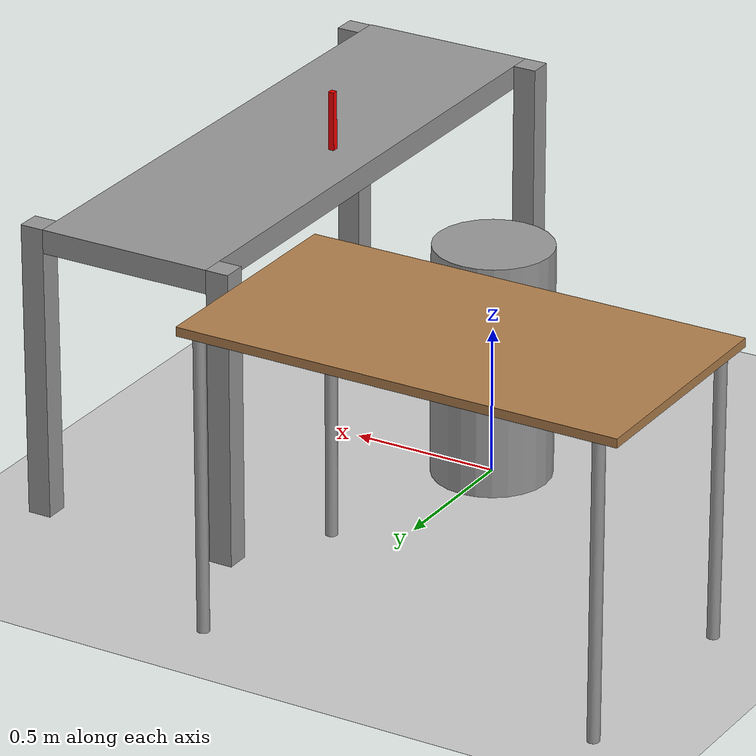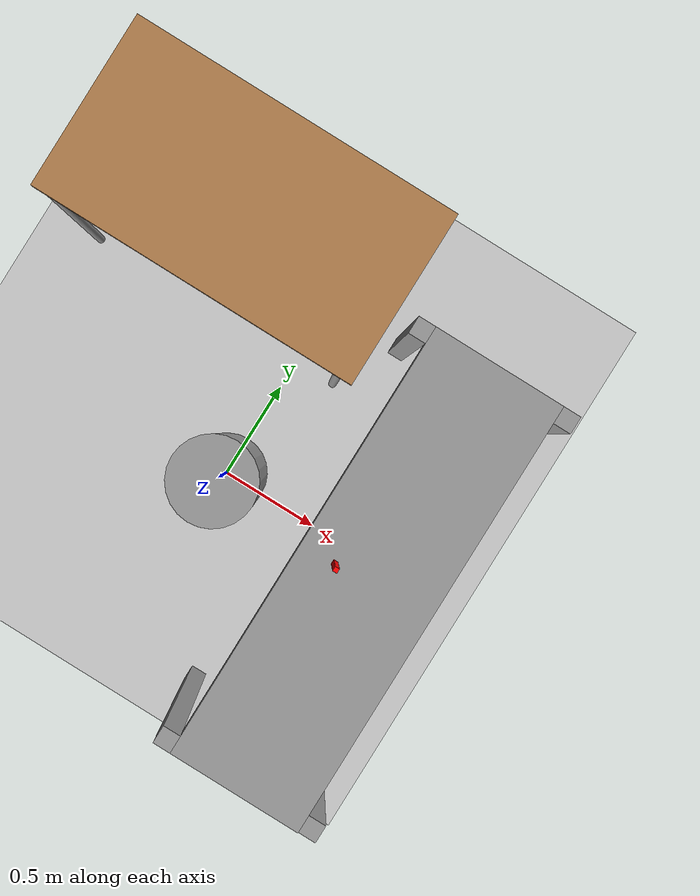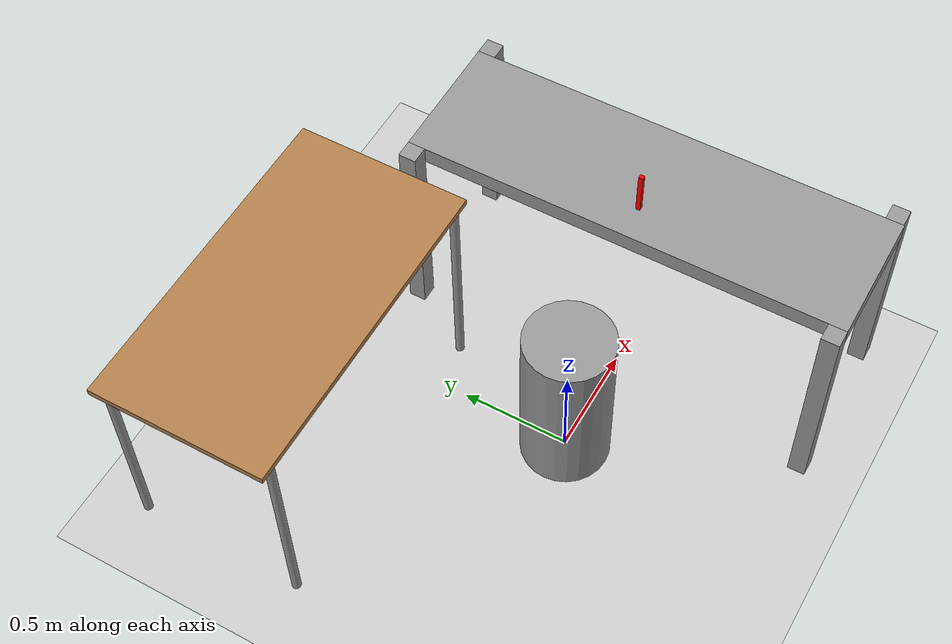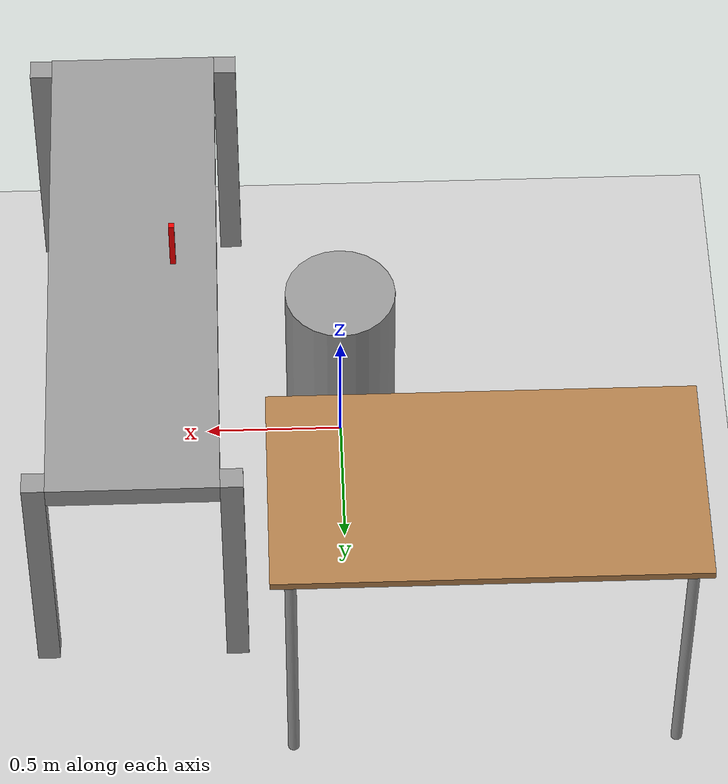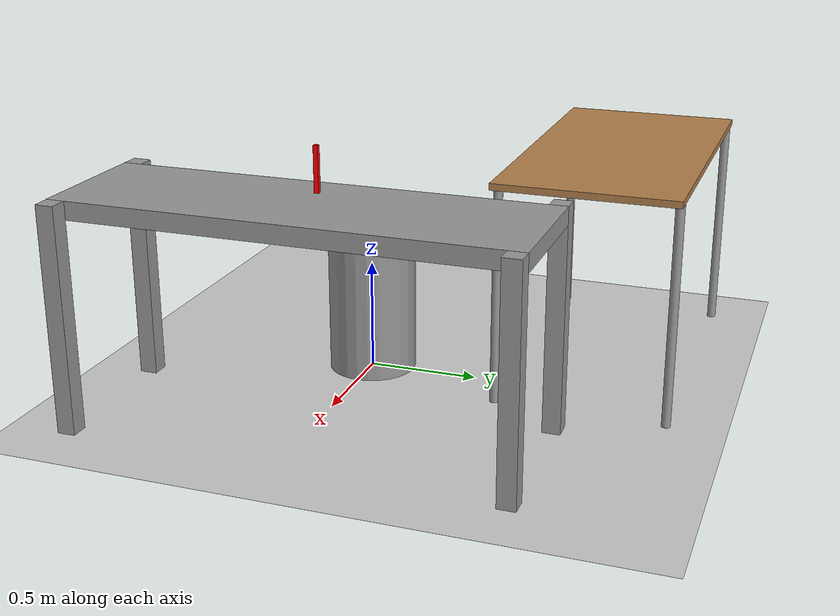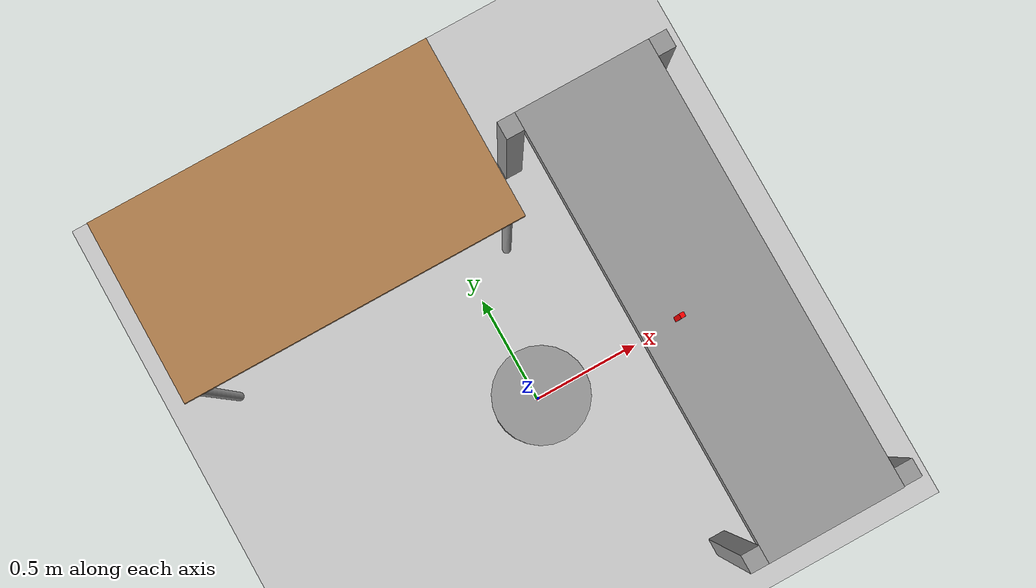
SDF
<sdf version="1.7">
 <world name="default">
  <light name="sun" type="directional">
   <pose>0 0 10 0 -0 0</pose>
   <diffuse>0.8 0.8 0.8 1</diffuse>
   <specular>0.2 0.2 0.2 1</specular>
   <attenuation>
    <range>1000</range>
    <constant>0.9</constant>
    <linear>0.01</linear>
    <quadratic>0.001</quadratic>
   </attenuation>
   <direction>-0.5 0.1 -0.9</direction>
   <spot><inner_angle>0</inner_angle><outer_angle>0</outer_angle><falloff>0</falloff></spot>
  </light>
  <model name="ground_plane">
   <static>1</static>
   <link name="link">
    <collision name="collision">
     <geometry><plane><normal>0 0 1</normal><size>100 100</size></plane></geometry>
     <surface>
      <contact><collide_bitmask>65535</collide_bitmask></contact>
      <friction><ode><mu>100</mu><mu2>50</mu2></ode></friction>
     </surface>
    </collision>
    <visual name="visual">
     <cast_shadows>0</cast_shadows>
     <geometry><plane><normal>0 0 1</normal><size>100 100</size></plane></geometry>
     <material>
      <script><uri>file://media/materials/scripts/gazebo.material</uri><name>Gazebo/Grey</name></script>
     </material>
    </visual>
   </link>
  </model>
  <gravity>0 0 -9.8</gravity>
  <magnetic_field>6e-06 2.3e-05 -4.2e-05</magnetic_field>
  <atmosphere type="adiabatic"/>
  <physics type="ode">
   <max_step_size>0.001</max_step_size>
   <real_time_factor>1</real_time_factor>
   <real_time_update_rate>1000</real_time_update_rate>
  </physics>
  <scene><ambient>0.4 0.4 0.4 1</ambient><background>0.7 0.7 0.7 1</background><shadows>1</shadows></scene>
  <spherical_coordinates>
   <surface_model>EARTH_WGS84</surface_model>
   <latitude_deg>0</latitude_deg>
   <longitude_deg>0</longitude_deg>
   <elevation>0</elevation>
   <heading_deg>0</heading_deg>
  </spherical_coordinates>
  <model name="table">
   <static>1</static>
   <link name="link_table">
    <collision name="surface">
     <pose>0 0 1 0 -0 0</pose>
     <geometry><box><size>1.5 0.8 0.03</size></box></geometry>
     <surface><friction><ode><mu>0.6</mu><mu2>0.6</mu2></ode></friction></surface>
    </collision>
    <visual name="visual1">
     <pose>0 0 1 0 -0 0</pose>
     <geometry><box><size>1.5 0.8 0.03</size></box></geometry>
     <material>
      <script><uri>file://media/materials/scripts/gazebo.material</uri><name>Gazebo/Wood</name></script>
     </material>
    </visual>
    <collision name="front_left_leg">
     <pose>0.68 0.38 0.5 0 -0 0</pose>
     <geometry><cylinder><radius>0.02</radius><length>1</length></cylinder></geometry>
    </collision>
    <visual name="front_left_leg">
     <pose>0.68 0.38 0.5 0 -0 0</pose>
     <geometry><cylinder><radius>0.02</radius><length>1</length></cylinder></geometry>
     <material>
      <script><uri>file://media/materials/scripts/gazebo.material</uri><name>Gazebo/Grey</name></script>
     </material>
    </visual>
    <collision name="front_right_leg">
     <pose>0.68 -0.38 0.5 0 -0 0</pose>
     <geometry><cylinder><radius>0.02</radius><length>1</length></cylinder></geometry>
    </collision>
    <visual name="front_right_leg">
     <pose>0.68 -0.38 0.5 0 -0 0</pose>
     <geometry><cylinder><radius>0.02</radius><length>1</length></cylinder></geometry>
     <material>
      <script><uri>file://media/materials/scripts/gazebo.material</uri><name>Gazebo/Grey</name></script>
     </material>
    </visual>
    <collision name="back_right_leg">
     <pose>-0.68 -0.38 0.5 0 -0 0</pose>
     <geometry><cylinder><radius>0.02</radius><length>1</length></cylinder></geometry>
    </collision>
    <visual name="back_right_leg">
     <pose>-0.68 -0.38 0.5 0 -0 0</pose>
     <geometry><cylinder><radius>0.02</radius><length>1</length></cylinder></geometry>
     <material>
      <script><uri>file://media/materials/scripts/gazebo.material</uri><name>Gazebo/Grey</name></script>
     </material>
    </visual>
    <collision name="back_left_leg">
     <pose>-0.68 0.38 0.5 0 -0 0</pose>
     <geometry><cylinder><radius>0.02</radius><length>1</length></cylinder></geometry>
    </collision>
    <visual name="back_left_leg">
     <pose>-0.68 0.38 0.5 0 -0 0</pose>
     <geometry><cylinder><radius>0.02</radius><length>1</length></cylinder></geometry>
     <material>
      <script><uri>file://media/materials/scripts/gazebo.material</uri><name>Gazebo/Grey</name></script>
     </material>
    </visual>
   </link>
   <pose>-0.470984 1.03526 0 0 -0 0</pose>
  </model>
  <model name="conveyor">
   <link name="link_0">
    <inertial>
     <mass>1</mass>
     <inertia>
      <ixx>0.166667</ixx>
      <ixy>0</ixy>
      <ixz>0</ixz>
      <iyy>0.166667</iyy>
      <iyz>0</iyz>
      <izz>0.166667</izz>
     </inertia>
    </inertial>
    <pose>0 -0.00065 0 0 -0 0</pose>
    <visual name="visual">
     <geometry><box><size>0.6 2 0.08</size></box></geometry>
     <material>
      <lighting>1</lighting>
      <script><uri>file://media/materials/scripts/gazebo.material</uri><name>Gazebo/Grey</name></script>
      <shader type="pixel"><normal_map>__default__</normal_map></shader>
      <ambient>0.21176 0.21568 0.21568 1</ambient>
      <diffuse>0.7 0.7 0.7 1</diffuse>
      <specular>0.01 0.01 0.01 1</specular>
      <emissive>0 0 0 1</emissive>
     </material>
    </visual>
    <collision name="collision">
     <geometry><box><size>0.6 2 0.08</size></box></geometry>
     <surface>
      <friction>
       <ode><mu>4</mu><mu2>1</mu2><fdir1>0 0 0</fdir1><slip1>0</slip1><slip2>0</slip2></ode>
       <torsional>
        <coefficient>1</coefficient>
        <patch_radius>0</patch_radius>
        <surface_radius>0</surface_radius>
        <use_patch_radius>1</use_patch_radius>
        <ode><slip>0</slip></ode>
       </torsional>
      </friction>
      <bounce><restitution_coefficient>0</restitution_coefficient><threshold>1e+06</threshold></bounce>
      <contact>
       <collide_without_contact>0</collide_without_contact>
       <collide_without_contact_bitmask>1</collide_without_contact_bitmask>
       <collide_bitmask>1</collide_bitmask>
       <ode>
        <soft_cfm>0</soft_cfm>
        <soft_erp>0.2</soft_erp>
        <kp>1e+13</kp>
        <kd>1</kd>
        <max_vel>0.01</max_vel>
        <min_depth>0</min_depth>
       </ode>
       <bullet>
        <split_impulse>1</split_impulse>
        <split_impulse_penetration_threshold>-0.01</split_impulse_penetration_threshold>
        <soft_cfm>0</soft_cfm>
        <soft_erp>0.2</soft_erp>
        <kp>1e+13</kp>
        <kd>1</kd>
       </bullet>
      </contact>
     </surface>
    </collision>
   </link>
   <link name="link_1">
    <inertial>
     <mass>1</mass>
     <inertia>
      <ixx>0.166667</ixx>
      <ixy>0</ixy>
      <ixz>0</ixz>
      <iyy>0.166667</iyy>
      <iyz>0</iyz>
      <izz>0.166667</izz>
     </inertia>
    </inertial>
    <pose>0.34 -0.9574 -0.46 0 -0 0</pose>
    <visual name="visual">
     <geometry><box><size>0.08 0.08 1</size></box></geometry>
     <material>
      <lighting>1</lighting>
      <script><uri>file://media/materials/scripts/gazebo.material</uri><name>Gazebo/Grey</name></script>
      <shader type="pixel"><normal_map>__default__</normal_map></shader>
      <ambient>0.3 0.3 0.3 1</ambient>
      <diffuse>0.7 0.7 0.7 1</diffuse>
      <specular>0.01 0.01 0.01 1</specular>
      <emissive>0 0 0 1</emissive>
     </material>
    </visual>
    <collision name="collision">
     <geometry><box><size>0.08 0.08 1</size></box></geometry>
     <surface>
      <friction>
       <ode><mu>1</mu><mu2>1</mu2><fdir1>0 0 0</fdir1><slip1>0</slip1><slip2>0</slip2></ode>
       <torsional>
        <coefficient>1</coefficient>
        <patch_radius>0</patch_radius>
        <surface_radius>0</surface_radius>
        <use_patch_radius>1</use_patch_radius>
        <ode><slip>0</slip></ode>
       </torsional>
      </friction>
      <bounce><restitution_coefficient>0</restitution_coefficient><threshold>1e+06</threshold></bounce>
      <contact>
       <collide_without_contact>0</collide_without_contact>
       <collide_without_contact_bitmask>1</collide_without_contact_bitmask>
       <collide_bitmask>1</collide_bitmask>
       <ode>
        <soft_cfm>0</soft_cfm>
        <soft_erp>0.2</soft_erp>
        <kp>1e+13</kp>
        <kd>1</kd>
        <max_vel>0.01</max_vel>
        <min_depth>0</min_depth>
       </ode>
       <bullet>
        <split_impulse>1</split_impulse>
        <split_impulse_penetration_threshold>-0.01</split_impulse_penetration_threshold>
        <soft_cfm>0</soft_cfm>
        <soft_erp>0.2</soft_erp>
        <kp>1e+13</kp>
        <kd>1</kd>
       </bullet>
      </contact>
     </surface>
    </collision>
   </link>
   <link name="link_1_clone">
    <inertial>
     <mass>1</mass>
     <inertia>
      <ixx>0.166667</ixx>
      <ixy>0</ixy>
      <ixz>0</ixz>
      <iyy>0.166667</iyy>
      <iyz>0</iyz>
      <izz>0.166667</izz>
     </inertia>
    </inertial>
    <pose>0.34 0.95935 -0.46 0 -0 0</pose>
    <visual name="visual">
     <geometry><box><size>0.08 0.08 1</size></box></geometry>
     <material>
      <lighting>1</lighting>
      <script><uri>file://media/materials/scripts/gazebo.material</uri><name>Gazebo/Grey</name></script>
      <shader type="pixel"><normal_map>__default__</normal_map></shader>
      <ambient>0.3 0.3 0.3 1</ambient>
      <diffuse>0.7 0.7 0.7 1</diffuse>
      <specular>0.01 0.01 0.01 1</specular>
      <emissive>0 0 0 1</emissive>
     </material>
    </visual>
    <collision name="collision">
     <geometry><box><size>0.08 0.08 1</size></box></geometry>
     <surface>
      <friction>
       <ode><mu>1</mu><mu2>1</mu2><fdir1>0 0 0</fdir1><slip1>0</slip1><slip2>0</slip2></ode>
       <torsional>
        <coefficient>1</coefficient>
        <patch_radius>0</patch_radius>
        <surface_radius>0</surface_radius>
        <use_patch_radius>1</use_patch_radius>
        <ode><slip>0</slip></ode>
       </torsional>
      </friction>
      <bounce><restitution_coefficient>0</restitution_coefficient><threshold>1e+06</threshold></bounce>
      <contact>
       <collide_without_contact>0</collide_without_contact>
       <collide_without_contact_bitmask>1</collide_without_contact_bitmask>
       <collide_bitmask>1</collide_bitmask>
       <ode>
        <soft_cfm>0</soft_cfm>
        <soft_erp>0.2</soft_erp>
        <kp>1e+13</kp>
        <kd>1</kd>
        <max_vel>0.01</max_vel>
        <min_depth>0</min_depth>
       </ode>
       <bullet>
        <split_impulse>1</split_impulse>
        <split_impulse_penetration_threshold>-0.01</split_impulse_penetration_threshold>
        <soft_cfm>0</soft_cfm>
        <soft_erp>0.2</soft_erp>
        <kp>1e+13</kp>
        <kd>1</kd>
       </bullet>
      </contact>
     </surface>
    </collision>
   </link>
   <link name="link_1_clone_0">
    <inertial>
     <mass>1</mass>
     <inertia>
      <ixx>0.166667</ixx>
      <ixy>0</ixy>
      <ixz>0</ixz>
      <iyy>0.166667</iyy>
      <iyz>0</iyz>
      <izz>0.166667</izz>
     </inertia>
    </inertial>
    <pose>-0.34 0.95935 -0.46 0 -0 0</pose>
    <visual name="visual">
     <geometry><box><size>0.08 0.08 1</size></box></geometry>
     <material>
      <lighting>1</lighting>
      <script><uri>file://media/materials/scripts/gazebo.material</uri><name>Gazebo/Grey</name></script>
      <shader type="pixel"><normal_map>__default__</normal_map></shader>
      <ambient>0.3 0.3 0.3 1</ambient>
      <diffuse>0.7 0.7 0.7 1</diffuse>
      <specular>0.01 0.01 0.01 1</specular>
      <emissive>0 0 0 1</emissive>
     </material>
    </visual>
    <collision name="collision">
     <geometry><box><size>0.08 0.08 1</size></box></geometry>
     <surface>
      <friction>
       <ode><mu>1</mu><mu2>1</mu2><fdir1>0 0 0</fdir1><slip1>0</slip1><slip2>0</slip2></ode>
       <torsional>
        <coefficient>1</coefficient>
        <patch_radius>0</patch_radius>
        <surface_radius>0</surface_radius>
        <use_patch_radius>1</use_patch_radius>
        <ode><slip>0</slip></ode>
       </torsional>
      </friction>
      <bounce><restitution_coefficient>0</restitution_coefficient><threshold>1e+06</threshold></bounce>
      <contact>
       <collide_without_contact>0</collide_without_contact>
       <collide_without_contact_bitmask>1</collide_without_contact_bitmask>
       <collide_bitmask>1</collide_bitmask>
       <ode>
        <soft_cfm>0</soft_cfm>
        <soft_erp>0.2</soft_erp>
        <kp>1e+13</kp>
        <kd>1</kd>
        <max_vel>0.01</max_vel>
        <min_depth>0</min_depth>
       </ode>
       <bullet>
        <split_impulse>1</split_impulse>
        <split_impulse_penetration_threshold>-0.01</split_impulse_penetration_threshold>
        <soft_cfm>0</soft_cfm>
        <soft_erp>0.2</soft_erp>
        <kp>1e+13</kp>
        <kd>1</kd>
       </bullet>
      </contact>
     </surface>
    </collision>
   </link>
   <link name="link_1_clone_1">
    <inertial>
     <mass>1</mass>
     <inertia>
      <ixx>0.166667</ixx>
      <ixy>0</ixy>
      <ixz>0</ixz>
      <iyy>0.166667</iyy>
      <iyz>0</iyz>
      <izz>0.166667</izz>
     </inertia>
    </inertial>
    <pose>-0.34 -0.96065 -0.46 0 -0 0</pose>
    <visual name="visual">
     <geometry><box><size>0.08 0.08 1</size></box></geometry>
     <material>
      <lighting>1</lighting>
      <script><uri>file://media/materials/scripts/gazebo.material</uri><name>Gazebo/Grey</name></script>
      <shader type="pixel"><normal_map>__default__</normal_map></shader>
      <ambient>0.3 0.3 0.3 1</ambient>
      <diffuse>0.7 0.7 0.7 1</diffuse>
      <specular>0.01 0.01 0.01 1</specular>
      <emissive>0 0 0 1</emissive>
     </material>
    </visual>
    <collision name="collision">
     <geometry><box><size>0.08 0.08 1</size></box></geometry>
     <surface>
      <friction>
       <ode><mu>1</mu><mu2>1</mu2><fdir1>0 0 0</fdir1><slip1>0</slip1><slip2>0</slip2></ode>
       <torsional>
        <coefficient>1</coefficient>
        <patch_radius>0</patch_radius>
        <surface_radius>0</surface_radius>
        <use_patch_radius>1</use_patch_radius>
        <ode><slip>0</slip></ode>
       </torsional>
      </friction>
      <bounce><restitution_coefficient>0</restitution_coefficient><threshold>1e+06</threshold></bounce>
      <contact>
       <collide_without_contact>0</collide_without_contact>
       <collide_without_contact_bitmask>1</collide_without_contact_bitmask>
       <collide_bitmask>1</collide_bitmask>
       <ode>
        <soft_cfm>0</soft_cfm>
        <soft_erp>0.2</soft_erp>
        <kp>1e+13</kp>
        <kd>1</kd>
        <max_vel>0.01</max_vel>
        <min_depth>0</min_depth>
       </ode>
       <bullet>
        <split_impulse>1</split_impulse>
        <split_impulse_penetration_threshold>-0.01</split_impulse_penetration_threshold>
        <soft_cfm>0</soft_cfm>
        <soft_erp>0.2</soft_erp>
        <kp>1e+13</kp>
        <kd>1</kd>
       </bullet>
      </contact>
     </surface>
    </collision>
   </link>
   <joint name="link_0_JOINT_0" type="fixed">
    <parent>link_0</parent>
    <child>link_1</child>
    <physics>
     <ode><limit><cfm>0</cfm><erp>0.2</erp></limit><suspension><cfm>0</cfm><erp>0.2</erp></suspension></ode>
    </physics>
   </joint>
   <joint name="link_0_JOINT_1" type="fixed">
    <parent>link_0</parent>
    <child>link_1_clone</child>
    <physics>
     <ode><limit><cfm>0</cfm><erp>0.2</erp></limit><suspension><cfm>0</cfm><erp>0.2</erp></suspension></ode>
    </physics>
   </joint>
   <joint name="link_0_JOINT_2" type="fixed">
    <parent>link_0</parent>
    <child>link_1_clone_0</child>
    <physics>
     <ode><limit><cfm>0</cfm><erp>0.2</erp></limit><suspension><cfm>0</cfm><erp>0.2</erp></suspension></ode>
    </physics>
   </joint>
   <joint name="link_0_JOINT_3" type="fixed">
    <parent>link_0</parent>
    <child>link_1_clone_1</child>
    <physics>
     <ode><limit><cfm>0</cfm><erp>0.2</erp></limit><suspension><cfm>0</cfm><erp>0.2</erp></suspension></ode>
    </physics>
   </joint>
   <static>0</static>
   <pose>0.741124 0.013155 0.96 0 -0 0.000423</pose>
  </model>
  <model name="support">
   <link name="link_2">
    <inertial>
     <mass>1</mass>
     <inertia><ixx>0.145833</ixx><ixy>0</ixy><ixz>0</ixz><iyy>0.145833</iyy><iyz>0</iyz><izz>0.125</izz></inertia>
    </inertial>
    <visual name="visual">
     <geometry><cylinder><radius>0.2</radius><length>0.8</length></cylinder></geometry>
     <material>
      <lighting>1</lighting>
      <script><uri>file://media/materials/scripts/gazebo.material</uri><name>Gazebo/Grey</name></script>
      <shader type="pixel"><normal_map>__default__</normal_map></shader>
      <ambient>0.3 0.3 0.3 1</ambient>
      <diffuse>0.7 0.7 0.7 1</diffuse>
      <specular>0.01 0.01 0.01 1</specular>
      <emissive>0 0 0 1</emissive>
     </material>
    </visual>
    <collision name="collision">
     <geometry><cylinder><radius>0.2</radius><length>0.8</length></cylinder></geometry>
     <surface>
      <friction>
       <ode><mu>1</mu><mu2>1</mu2><fdir1>0 0 0</fdir1><slip1>0</slip1><slip2>0</slip2></ode>
       <torsional>
        <coefficient>1</coefficient>
        <patch_radius>0</patch_radius>
        <surface_radius>0</surface_radius>
        <use_patch_radius>1</use_patch_radius>
        <ode><slip>0</slip></ode>
       </torsional>
      </friction>
      <bounce><restitution_coefficient>0</restitution_coefficient><threshold>1e+06</threshold></bounce>
      <contact>
       <collide_without_contact>0</collide_without_contact>
       <collide_without_contact_bitmask>1</collide_without_contact_bitmask>
       <collide_bitmask>1</collide_bitmask>
       <ode>
        <soft_cfm>0</soft_cfm>
        <soft_erp>0.2</soft_erp>
        <kp>1e+13</kp>
        <kd>1</kd>
        <max_vel>0.01</max_vel>
        <min_depth>0</min_depth>
       </ode>
       <bullet>
        <split_impulse>1</split_impulse>
        <split_impulse_penetration_threshold>-0.01</split_impulse_penetration_threshold>
        <soft_cfm>0</soft_cfm>
        <soft_erp>0.2</soft_erp>
        <kp>1e+13</kp>
        <kd>1</kd>
       </bullet>
      </contact>
     </surface>
    </collision>
   </link>
   <static>0</static>
   <pose>1e-06 1e-06 0.399998 -1e-06 0 0</pose>
  </model>
  <audio><device>default</device></audio>
  <model name="object">
   <link name="link_0">
    <inertial>
     <mass>1</mass>
     <inertia>
      <ixx>0.166667</ixx>
      <ixy>0</ixy>
      <ixz>0</ixz>
      <iyy>0.166667</iyy>
      <iyz>0</iyz>
      <izz>0.166667</izz>
     </inertia>
    </inertial>
    <visual name="visual">
     <geometry><box><size>0.02 0.02 0.2</size></box></geometry>
     <material>
      <lighting>1</lighting>
      <script><uri>file://media/materials/scripts/gazebo.material</uri><name>Gazebo/Grey</name></script>
      <shader type="pixel"><normal_map>__default__</normal_map></shader>
      <ambient>1 0 0 1</ambient>
      <diffuse>0.7 0.7 0.7 1</diffuse>
      <specular>0.01 0.01 0.01 1</specular>
      <emissive>0 0 0 1</emissive>
     </material>
    </visual>
    <collision name="collision">
     <geometry><box><size>0.02 0.02 0.2</size></box></geometry>
     <surface>
      <friction>
       <ode><mu>1</mu><mu2>1</mu2><fdir1>0 0 0</fdir1><slip1>0</slip1><slip2>0</slip2></ode>
       <torsional>
        <coefficient>1</coefficient>
        <patch_radius>0</patch_radius>
        <surface_radius>0</surface_radius>
        <use_patch_radius>1</use_patch_radius>
        <ode><slip>0</slip></ode>
       </torsional>
      </friction>
      <bounce><restitution_coefficient>0</restitution_coefficient><threshold>1e+06</threshold></bounce>
      <contact>
       <collide_without_contact>0</collide_without_contact>
       <collide_without_contact_bitmask>1</collide_without_contact_bitmask>
       <collide_bitmask>1</collide_bitmask>
       <ode>
        <soft_cfm>0</soft_cfm>
        <soft_erp>0.2</soft_erp>
        <kp>1e+13</kp>
        <kd>1</kd>
        <max_vel>0.01</max_vel>
        <min_depth>0</min_depth>
       </ode>
       <bullet>
        <split_impulse>1</split_impulse>
        <split_impulse_penetration_threshold>-0.01</split_impulse_penetration_threshold>
        <soft_cfm>0</soft_cfm>
        <soft_erp>0.2</soft_erp>
        <kp>1e+13</kp>
        <kd>1</kd>
       </bullet>
      </contact>
     </surface>
    </collision>
   </link>
   <static>0</static>
   <pose>0.595816 0.001662 1.1 5e-06 1.5e-05 -0.001017</pose>
  </model>
  <plugin name="gazebo_link_attacher" filename="libgazebo_link_attacher.so"/>
 </world>
</sdf>
